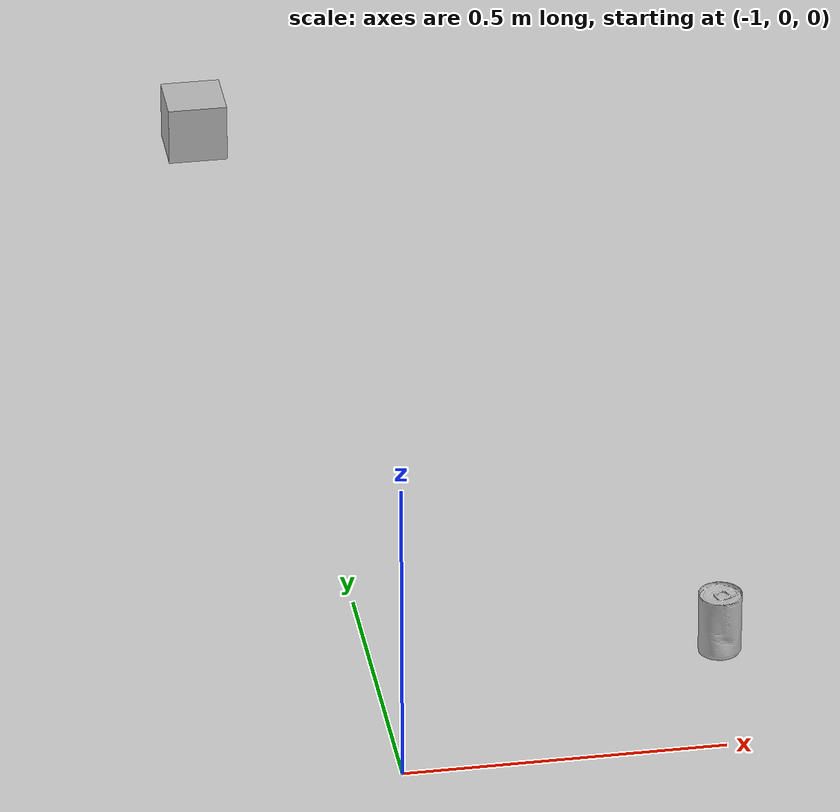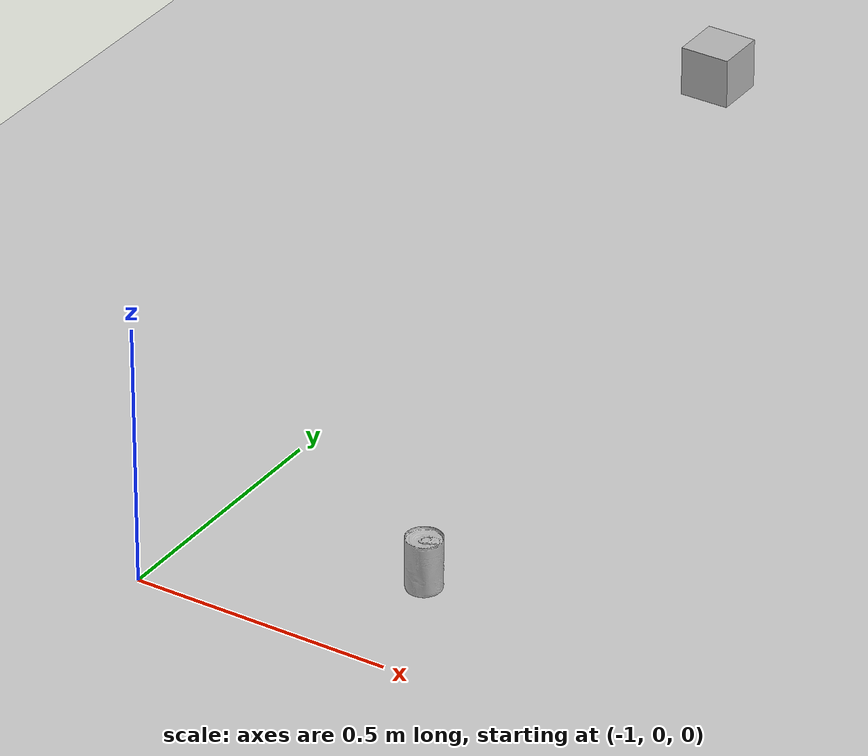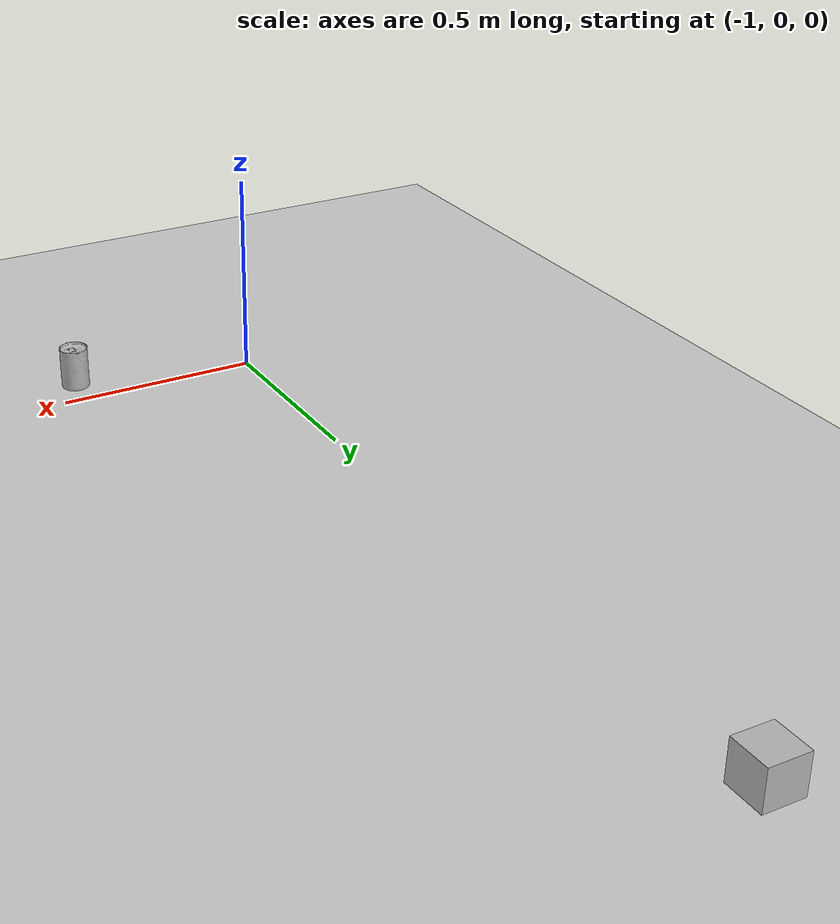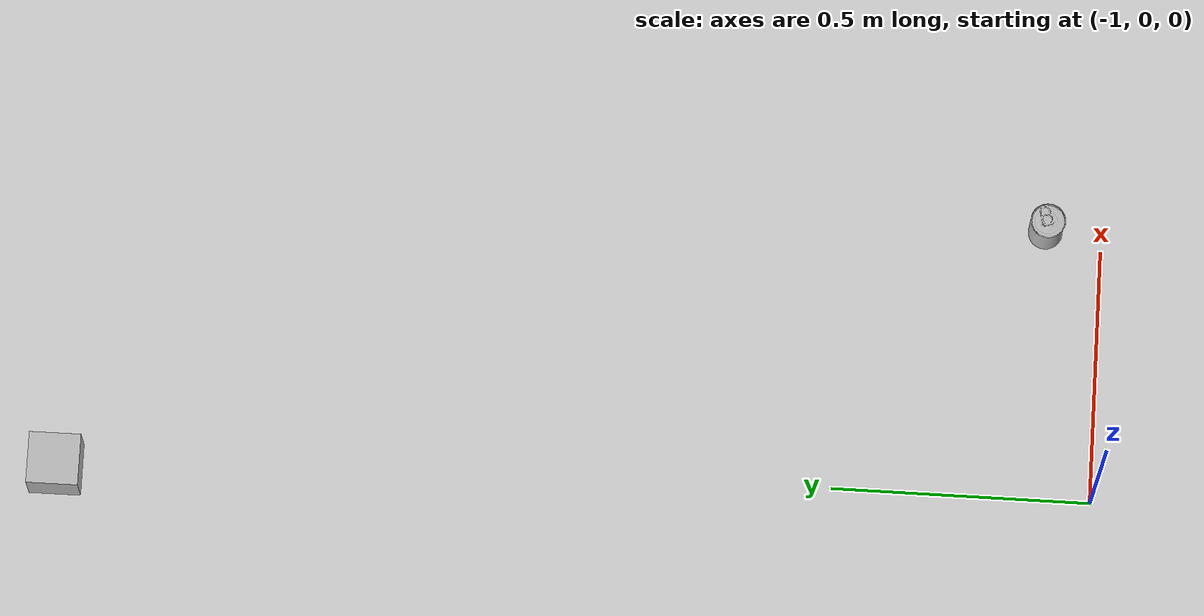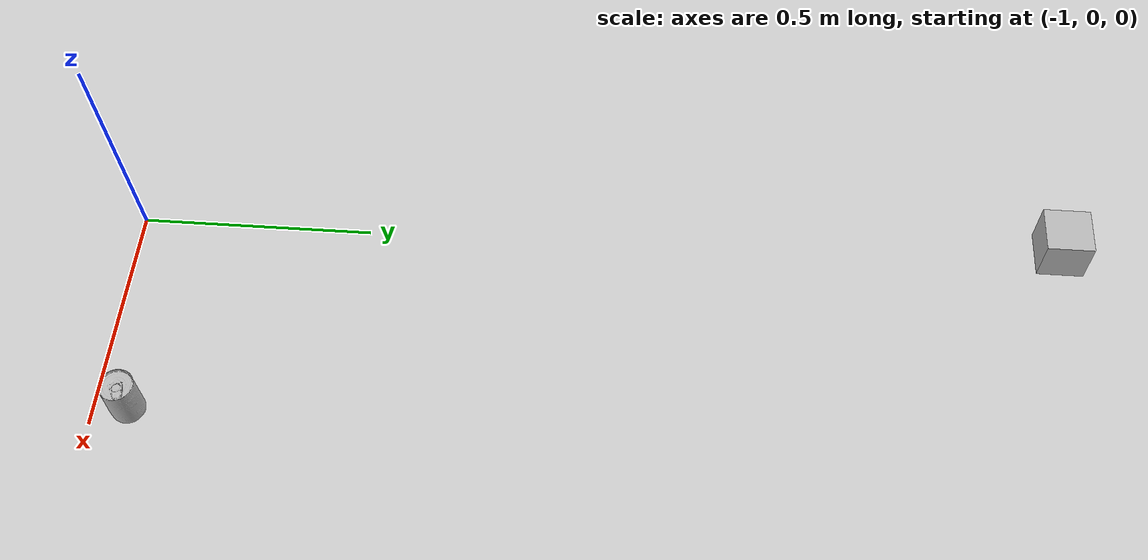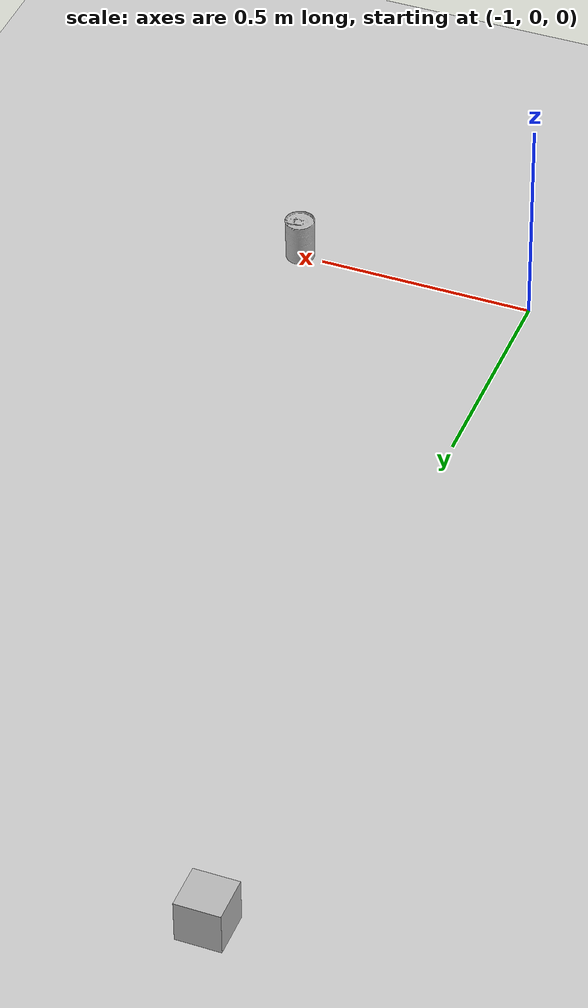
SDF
<?xml version="1.0" ?>
<sdf version="1.4">
  <!-- We use a custom world for the rrbot so that the camera angle is launched correctly -->

  <world name="default">
    <include>
      <uri>model://ground_plane</uri>
    </include>

    <!-- Global light source -->
    <include>
      <uri>model://sun</uri>
    </include>

    <!-- Focus camera on tall pendulum -->
    <gui fullscreen='0'>
      <camera name='user_camera'>
        <pose>4.927360 -4.376610 3.740080 0.000000 0.275643 2.356190</pose>
        <view_controller>orbit</view_controller>
      </camera>
    </gui>

    <light name='user_point_light_0' type='point'>
      <pose>-0.193611 0.221718 0.1 0 -0 0</pose>
      <diffuse>0.5 0.5 0.5 1</diffuse>
      <specular>0.1 0.1 0.1 1</specular>
      <attenuation>
        <range>100</range>
        <constant>0.05</constant>
        <linear>0.01</linear>
        <quadratic>0.001</quadratic>
      </attenuation>
      <cast_shadows>0</cast_shadows>
      <direction>0 0 -1</direction>
    </light>

    <model name='tomato_soup_can'>
      <link name='tomato_soup_can_link'>
        <inertial>
          <mass>0.349</mass>
          <inertia>
            <ixx>0.000391694</ixx>
            <ixy>0</ixy>
            <ixz>0</ixz>
            <iyy>0.000391694</iyy>
            <iyz>0</iyz>
            <izz>0.00019003</izz>
          </inertia>
          <pose>0 0 0.0505 0 -0 0</pose>
        </inertial>
        <collision name='collision'>
          <pose>0 0 0.0505 0 -0 0</pose>
          <geometry>
            <cylinder>
              <radius>0.033</radius>
              <length>0.101</length>
            </cylinder>
          </geometry>
          <max_contacts>10</max_contacts>
          <surface>
            <contact>
              <ode/>
            </contact>
            <bounce/>
            <friction>
              <torsional>
                <ode/>
              </torsional>
              <ode/>
            </friction>
          </surface>
        </collision>
        <visual name='visual'>
          <pose>0.01 -0.085 0 0 -0 0</pose>
          <geometry>
            <mesh>
              <uri>model://tomato_soup_can/meshes/textured.dae</uri>
            </mesh>
          </geometry>
        </visual>
        <self_collide>0</self_collide>
        <enable_wind>0</enable_wind>
        <kinematic>0</kinematic>
      </link>
      <plugin name="circle_soup_can" filename="libcircle_soup_can.so"/>
      <plugin name="p3d_base_controller" filename="libgazebo_ros_p3d.so">
        <alwaysOn>true</alwaysOn>
        <updateRate>30.0</updateRate>
        <bodyName>tomato_soup_can_link</bodyName>
        <topicName>/odom/soup_can_pose</topicName>
        <gaussianNoise>0.01</gaussianNoise>
        <frameName>world</frameName>
        <xyzOffsets>0 0 0</xyzOffsets>
        <rpyOffsets>0 0 0</rpyOffsets>
      </plugin>
      <pose>-0.5 0.2 0.1 0 -0 0</pose>
    </model>

    <model name='camera'>
      <pose>-1.04513 2 0.05 0 -0 0</pose>
      <link name='link'>
        <inertial>
          <mass>0.1</mass>
          <inertia>
            <ixx>0.000166667</ixx>
            <iyy>0.000166667</iyy>
            <izz>0.000166667</izz>
            <ixy>0</ixy>
            <ixz>0</ixz>
            <iyz>0</iyz>
          </inertia>
          <pose>0 0 0 0 -0 0</pose>
        </inertial>
        <collision name='collision'>
          <geometry>
            <box>
              <size>0.1 0.1 0.1</size>
            </box>
          </geometry>
          <max_contacts>10</max_contacts>
          <surface>
            <contact>
              <ode/>
            </contact>
            <bounce/>
            <friction>
              <torsional>
                <ode/>
              </torsional>
              <ode/>
            </friction>
          </surface>
        </collision>
        <visual name='visual'>
          <geometry>
            <box>
              <size>0.1 0.1 0.1</size>
            </box>
          </geometry>
        </visual>
        <sensor name='camera' type='camera'>
          <camera>
            <horizontal_fov>1.047</horizontal_fov>
            <image>
              <width>320</width>
              <height>240</height>
            </image>
            <clip>
              <near>0.1</near>
              <far>100</far>
            </clip>
          </camera>
          <always_on>1</always_on>
          <update_rate>30</update_rate>
          <visualize>1</visualize>
          <plugin name="camera_controller" filename="libgazebo_ros_camera.so">
            <alwaysOn>true</alwaysOn>
            <updateRate>0.0</updateRate>
            <cameraName>firstcam/camera</cameraName>
            <imageTopicName>image_raw</imageTopicName>
            <cameraInfoTopicName>camera_info</cameraInfoTopicName>
            <frameName>camera_link_optical</frameName>
            <!-- setting hackBaseline to anything but 0.0 will cause a misalignment
                between the gazebo sensor image and the frame it is supposed to
                be attached to -->
            <hackBaseline>0.0</hackBaseline>
            <distortionK1>0.0</distortionK1>
            <distortionK2>0.0</distortionK2>
            <distortionK3>0.0</distortionK3>
            <distortionT1>0.0</distortionT1>
            <distortionT2>0.0</distortionT2>
            <CxPrime>0</CxPrime>
            <Cx>0.0</Cx>
            <Cy>0.0</Cy>
            <focalLength>0.0</focalLength>
          </plugin>
        </sensor>
        <self_collide>0</self_collide>
        <enable_wind>0</enable_wind>
        <kinematic>0</kinematic>
      </link>
    </model>
  </world>
</sdf>
